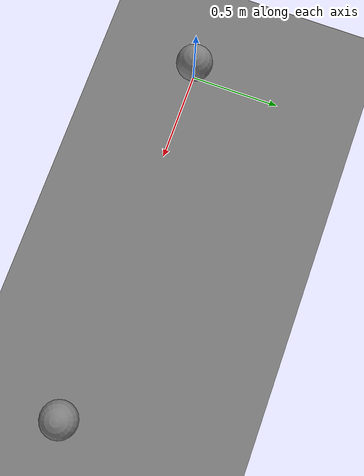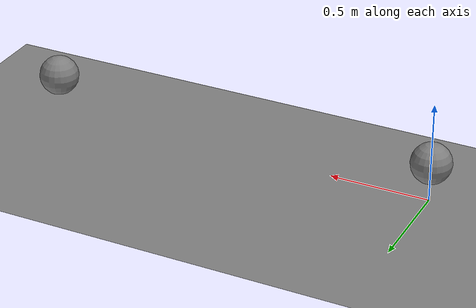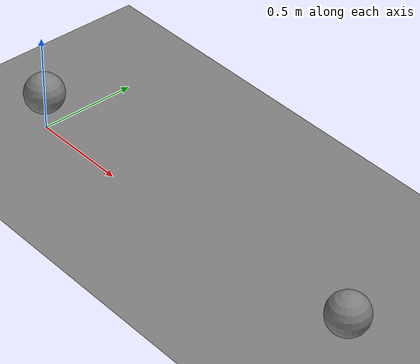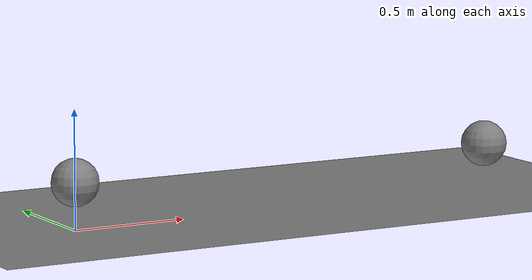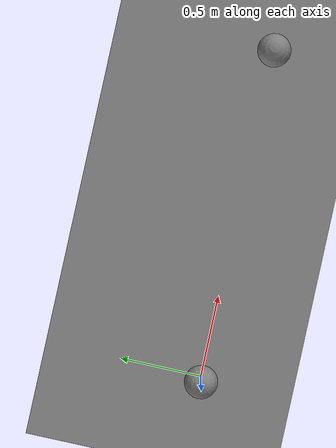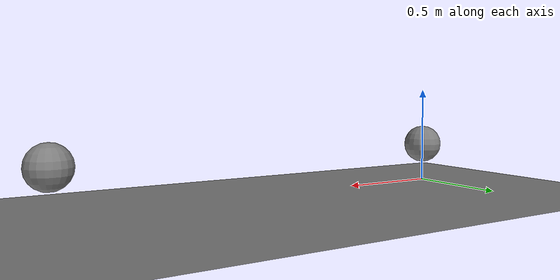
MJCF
<mujoco model="indirection_test">
        <option gravity="0 0 -9.81" timestep="0.002" sleep_tolerance="0.1">
            <flag sleep="enable"/>
        </option>
        <worldbody>
            <geom type="plane" size="5 5 0.1" solref="0.005 1.5"/>
            <body name="ball1" pos="0 0 0.2">
                <freejoint name="j1"/>
                <geom type="sphere" size="0.1" mass="1.0" solref="0.005 1.5"/>
            </body>
            <body name="ball2" pos="2 0 0.2">
                <freejoint name="j2"/>
                <geom type="sphere" size="0.1" mass="1.0" solref="0.005 1.5"/>
            </body>
        </worldbody>
    </mujoco>
